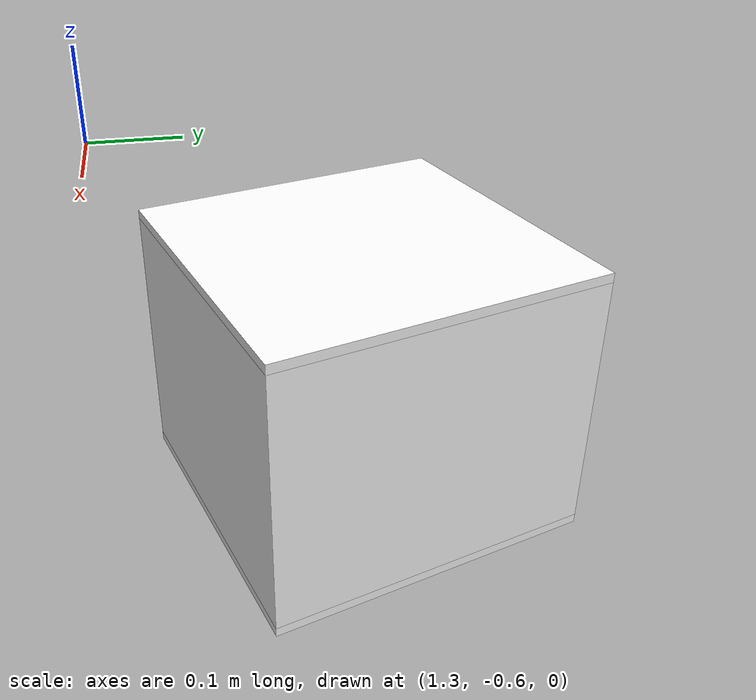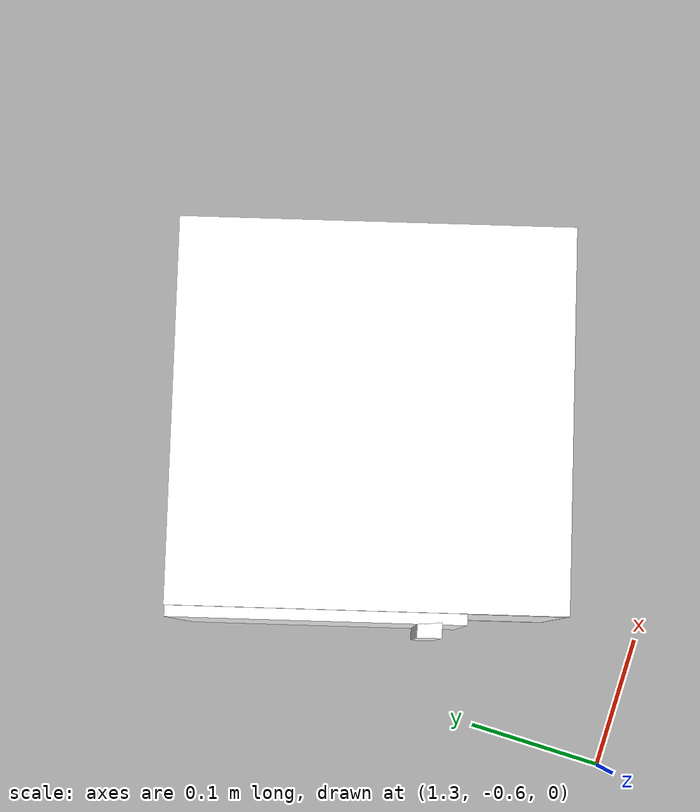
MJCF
<mujoco model="cabinet">
    <compiler angle="radian" eulerseq='zxy' />
    <option gravity = "0 0 0" />
    <option>
        <flag contact = "disable"/>
    </option>
    <statistic	extent="1.0" center="0.0 0.0 0.0"/>
    <visual>
        <map fogstart="3" fogend="5" force="0.1" znear=" 0.100000 " zfar=" 12.000000 "/>
    </visual>
    <size njmax="500" nconmax="100" />
    <actuator>
        <velocity joint="bottom_left_hinge" name="viva_revolution" kv='10'></velocity>
    </actuator>
    <asset>
        <texture builtin="flat" name="tabletex" height="32" width="32" rgb1="1 1 1" type="cube"></texture>
        <texture builtin="flat" name="objtex" height="32" width="32" rgb1="1 1 1" type="cube"></texture>
        <texture builtin="flat" name="handletex" height="32" width="32" rgb1="1 1 1" type="cube"></texture>
        <texture builtin="flat" name="wallpaper" height="32" width="32" rgb1="1 0 0" type="cube"></texture>
        <texture builtin="flat" name="kp" height="32" width="32" rgb1="1 1 1" type="cube"></texture>
        <material name="geomTable" shininess="0.03" specular="0.75" texture="tabletex"></material>
        <material name="geomObj" shininess="0.03" specular="0.75" texture="objtex"></material>
        <material name="geomHandle" shininess="0.03" specular="0.75" texture="handletex"></material>
        <material name="ax" shininess="0.03" specular="0.75" texture="wallpaper"></material>
        <material name="bg" shininess="0.03" specular="0.75" texture="wallpaper"></material>
        <material name="geomKeypad" shininess="0.03" specular="0.75" texture="kp"></material>
    </asset>
    <worldbody>
        <body name="cabinet_bottom" pos= " 1.510566 -0.352257 -0.303349 "  quat= " -0.138564 0.000000 0.000000 0.990353" >
            <inertial pos="0 0 0" mass="1" diaginertia="1 1 1" />
            <geom size= " 0.157353 0.161473 0.009135 "  type="box" material="geomObj" name="b"/>
            <body name="cabinet_left" pos= " 0.000000 -0.152339 0.129364 " >
                <inertial pos="0 0 0" mass="1" diaginertia="1 1 1" />
                <geom size= " 0.157353 0.009135 0.129364 "  type="box" material="geomObj" name="c" />
            </body>
            <body name="cabinet_right" pos= " 0.000000 0.152339 0.129364 " >
                <inertial pos="0 0 0" mass="1" diaginertia="1 1 1" />
                <geom size= " 0.157353 0.009135 0.129364 "  type="box" material="geomObj" name="d" />
            </body>
            <body name="cabinet_top" pos= " 0.000000 0.000000 0.258727 " >
                <inertial pos="0 0 0" mass="1" diaginertia="1 1 1" />
                <geom size= " 0.157353 0.161473 0.009135 "  type="box" material="geomObj" name="e"/>
            </body>
            <body name="cabinet_back" pos= " -0.148219 0.000000 0.129364 "  >
                <inertial pos="0 0 0" mass="1" diaginertia="1 1 1" />
                <geom size= " 0.009135 0.161473 0.129364 "  type="box" material="geomObj" name="f" />
            </body>
            <body name="cabinet_keypad" pos= " 0.009135 0.120105 0.129364 " >
                <inertial pos="0 0 0" mass="1" diaginertia="1 1 1" />
                <geom size= " 0.148219 0.040368 0.120229 "  type="box" material="geomKeypad" name="keypizzlemynizzle" />
            </body>
            <body name="cabinet_left_hinge" pos= " 0.157353 -0.161473 0.129364 " >
                <inertial pos= " 0.000000 0.121105 0.000000 "  mass="1" diaginertia="1 1 1" />
                <joint name="bottom_left_hinge" type="hinge" pos="0 0 0" axis="0 0 1" limited="true" range= "-2.3 0"  />
                <geom size= " 0.009135 0.121105 0.129364 "  pos= " 0.000000 0.121105 0.000000 "  type="box" material="geomObj" name="g"/>
                <body name="handle_link" pos= " 0.010000 0.212210 0.000000 " >
                    <inertial pos="0 0 0" mass="1" diaginertia="1 1 1" />
                    <geom size= " 0.010000 0.010000 0.129364 "  type="box" material="geomHandle" name="h"/>
                </body>
            </body>
        </body>
        <body name="external_camera_body_0" pos="0.0 0 0.00" >
            <camera euler="-1.57 1.57 0.0" fovy=" 54.280851 " name="external_camera_0" pos="0.0 0 0"></camera>
            <inertial pos= " 0.00 0.0 0.000000 " mass="1" diaginertia="1 1 1" />
            <joint name="cam_j" pos="0.0 0 0" axis = "1 0 0" type="free" />
        </body>
    </worldbody>
</mujoco>
